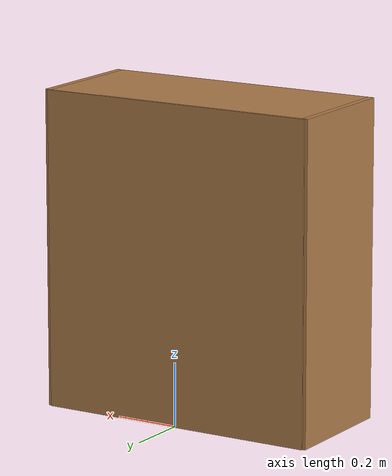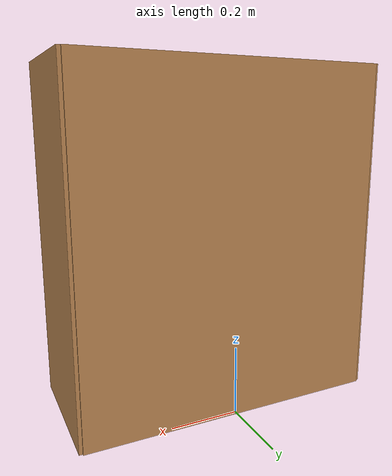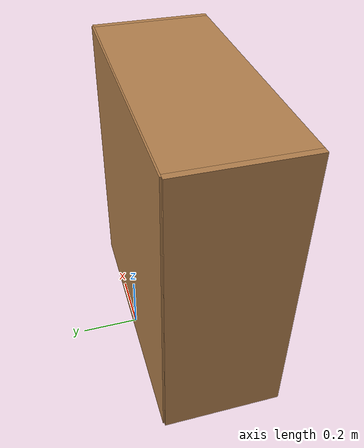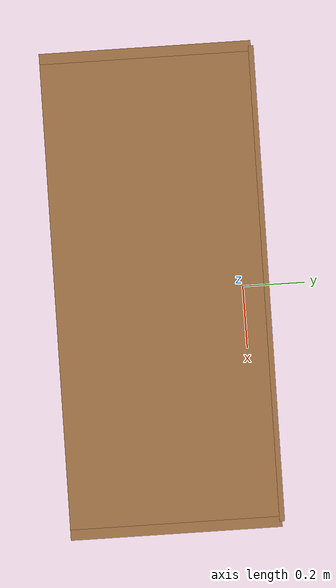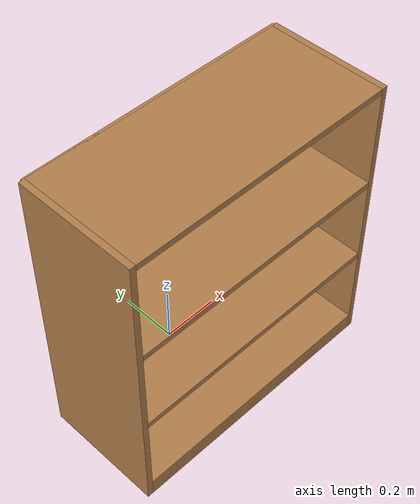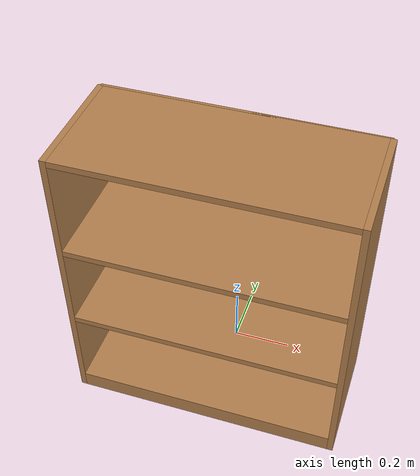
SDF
<?xml version="1.0" ?>
<sdf version="1.5">
  <model name="bookshelf">
    <static>true</static>
    <link name="link">
      <inertial>
        <mass>1.0</mass>
      </inertial>

      <!-- Back panel -->
      <collision name="back">
        <pose>0 0.005 0.5 0 0 0</pose>
        <geometry><box><size>0.9 0.01 1.0</size></box></geometry>
      </collision>
      <visual name="visual1">
        <pose>0 0.005 0.5 0 0 0</pose>
        <geometry><box><size>0.9 0.01 1.0</size></box></geometry>
        <material><script><uri>file://media/materials/scripts/gazebo.material</uri><name>Gazebo/Wood</name></script></material>
      </visual>

      <!-- Side panels -->
      <collision name="left_side">
        <pose>0.45 -0.195 0.5 0 0 0</pose>
        <geometry><box><size>0.02 0.4 1.0</size></box></geometry>
      </collision>
      <visual name="visual2">
        <pose>0.45 -0.195 0.5 0 0 0</pose>
        <geometry><box><size>0.02 0.4 1.0</size></box></geometry>
        <material><script><uri>file://media/materials/scripts/gazebo.material</uri><name>Gazebo/Wood</name></script></material>
      </visual>
      <collision name="right_side">
        <pose>-0.45 -0.195 0.5 0 0 0</pose>
        <geometry><box><size>0.02 0.4 1.0</size></box></geometry>
      </collision>
      <visual name="visual3">
        <pose>-0.45 -0.195 0.5 0 0 0</pose>
        <geometry><box><size>0.02 0.4 1.0</size></box></geometry>
        <material><script><uri>file://media/materials/scripts/gazebo.material</uri><name>Gazebo/Wood</name></script></material>
      </visual>

      <!-- Bottom -->
      <collision name="bottom">
        <pose>0 -0.195 0.03 0 0 0</pose>
        <geometry><box><size>0.88 0.4 0.06</size></box></geometry>
      </collision>
      <visual name="visual4">
        <pose>0 -0.195 0.03 0 0 0</pose>
        <geometry><box><size>0.88 0.4 0.06</size></box></geometry>
        <material><script><uri>file://media/materials/scripts/gazebo.material</uri><name>Gazebo/Wood</name></script></material>
      </visual>

      <!-- Top -->
      <collision name="top">
        <pose>0 -0.195 0.99 0 0 0</pose>
        <geometry><box><size>0.88 0.4 0.02</size></box></geometry>
      </collision>
      <visual name="visual5">
        <pose>0 -0.195 0.99 0 0 0</pose>
        <geometry><box><size>0.88 0.4 0.02</size></box></geometry>
        <material><script><uri>file://media/materials/scripts/gazebo.material</uri><name>Gazebo/Wood</name></script></material>
      </visual>

      <!-- Lower shelf -->
      <collision name="low_shelf">
        <pose>0 -0.195 0.35 0 0 0</pose>
        <geometry><box><size>0.88 0.4 0.02</size></box></geometry>
      </collision>
      <visual name="visual6">
        <pose>0 -0.195 0.35 0 0 0</pose>
        <geometry><box><size>0.88 0.4 0.02</size></box></geometry>
        <material><script><uri>file://media/materials/scripts/gazebo.material</uri><name>Gazebo/Wood</name></script></material>
      </visual>

      <!-- Upper shelf -->
      <collision name="high_shelf">
        <pose>0 -0.195 0.65 0 0 0</pose>
        <geometry><box><size>0.88 0.4 0.02</size></box></geometry>
      </collision>
      <visual name="visual7">
        <pose>0 -0.195 0.65 0 0 0</pose>
        <geometry><box><size>0.88 0.4 0.02</size></box></geometry>
        <material><script><uri>file://media/materials/scripts/gazebo.material</uri><name>Gazebo/Wood</name></script></material>
      </visual>

    </link>
  </model>
</sdf>
